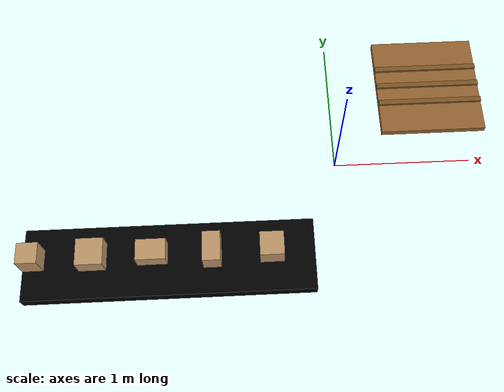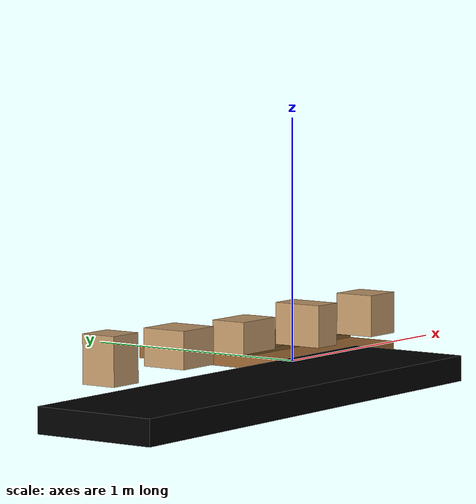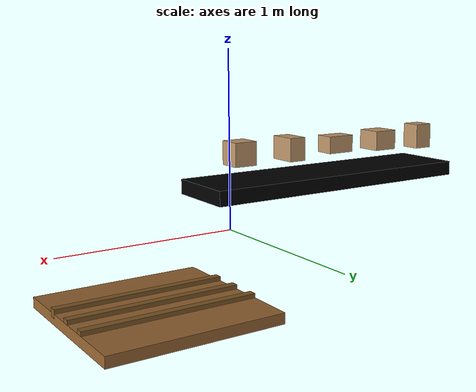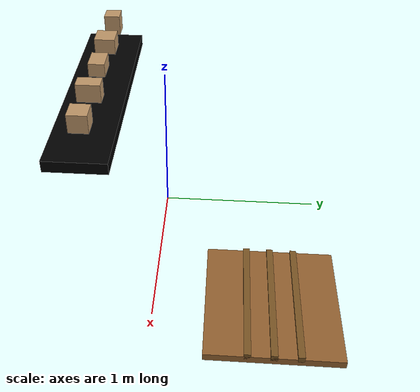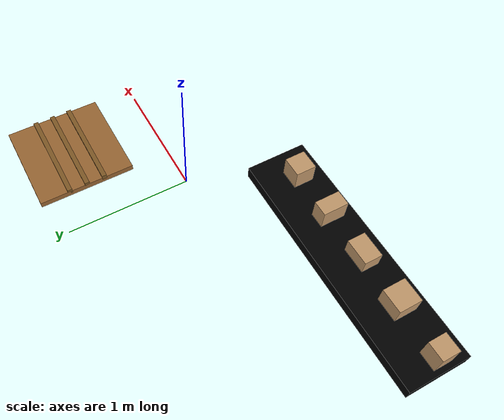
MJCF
<mujoco>
    <option gravity="0 0 -9.81"/>

    <default>
        <geom solimp="0.99 0.99 0.01" solref="0.002 1" friction="1.0 0.005 0.001"/>
    </default>

    <worldbody>
        <!-- Static Conveyor Belt -->
        <body pos="-1.2 -0.7 -0.13">
            <body name="conveyor_belt" pos="0 0 0.2">
                <geom type="box" size="1 0.25 0.05" rgba="0 0 0 1"/>
            </body>
        </body>

        <!-- Pallet at the end of conveyor -->
        <!-- Pallet resting on the floor at z = -0.12 -->
        <body name="pallet" pos="0.8 0.7 -0.095"> <!-- -0.095 = -0.12 (floor) + 0.025 (half height) -->
            <geom type="box" size="0.4 0.4 0.025" rgba="0.6 0.4 0.2 1" mass="1.0"/>
            <!-- Pallet slats on top -->
            <geom pos="0 -0.15 0.025" size="0.4 0.02 0.02" type="box" rgba="0.5 0.35 0.15 1"/>
            <geom pos="0 0 0.025" size="0.4 0.02 0.02" type="box" rgba="0.5 0.35 0.15 1"/>
            <geom pos="0 0.15 0.025" size="0.4 0.02 0.02" type="box" rgba="0.5 0.35 0.15 1"/>
        </body>

        <body name="box_1" pos="-0.5 -0.7 0.3">
            <geom type="box" size="0.08 0.08 0.08" rgba="0.76 0.60 0.42 1" mass="0.1"/>
            <joint name="joint_1" type="free" damping="1.0"/>
        </body>
        <body name="box_2" pos="-0.9 -0.7 0.3">
            <geom type="box" size="0.06 0.1 0.08" rgba="0.76 0.60 0.42 1" mass="0.1"/>
            <joint name="joint_2" type="free" damping="1.0"/>
        </body>
        <body name="box_3" pos="-1.3 -0.7 0.3">
            <geom type="box" size="0.1 0.07 0.06" rgba="0.76 0.60 0.42 1" mass="0.1"/>
            <joint name="joint_3" type="free" damping="1.0"/>
        </body>
        <body name="box_4" pos="-1.7 -0.7 0.3">
            <geom type="box" size="0.09 0.09 0.07" rgba="0.76 0.60 0.42 1" mass="0.1"/>
            <joint name="joint_4" type="free" damping="1.0"/>
        </body>
        <body name="box_5" pos="-2.1 -0.7 0.3">
            <geom type="box" size="0.07 0.07 0.09" rgba="0.76 0.60 0.42 1" mass="0.1"/>
            <joint name="joint_5" type="free" damping="1.0"/>
        </body>

    </worldbody>

    <actuator>
        <!-- Velocity actuators to move boxes along x-axis -->
        <velocity name="vel_1" joint="joint_1" gear="1 0 0 0 0 0" ctrlrange="-20 20"/>
        <velocity name="vel_2" joint="joint_2" gear="1 0 0 0 0 0" ctrlrange="-20 20"/>
        <velocity name="vel_3" joint="joint_3" gear="1 0 0 0 0 0" ctrlrange="-20 20"/>
        <velocity name="vel_4" joint="joint_4" gear="1 0 0 0 0 0" ctrlrange="-20 20"/>
        <velocity name="vel_5" joint="joint_5" gear="1 0 0 0 0 0" ctrlrange="-20 20"/>
    </actuator>
</mujoco>
